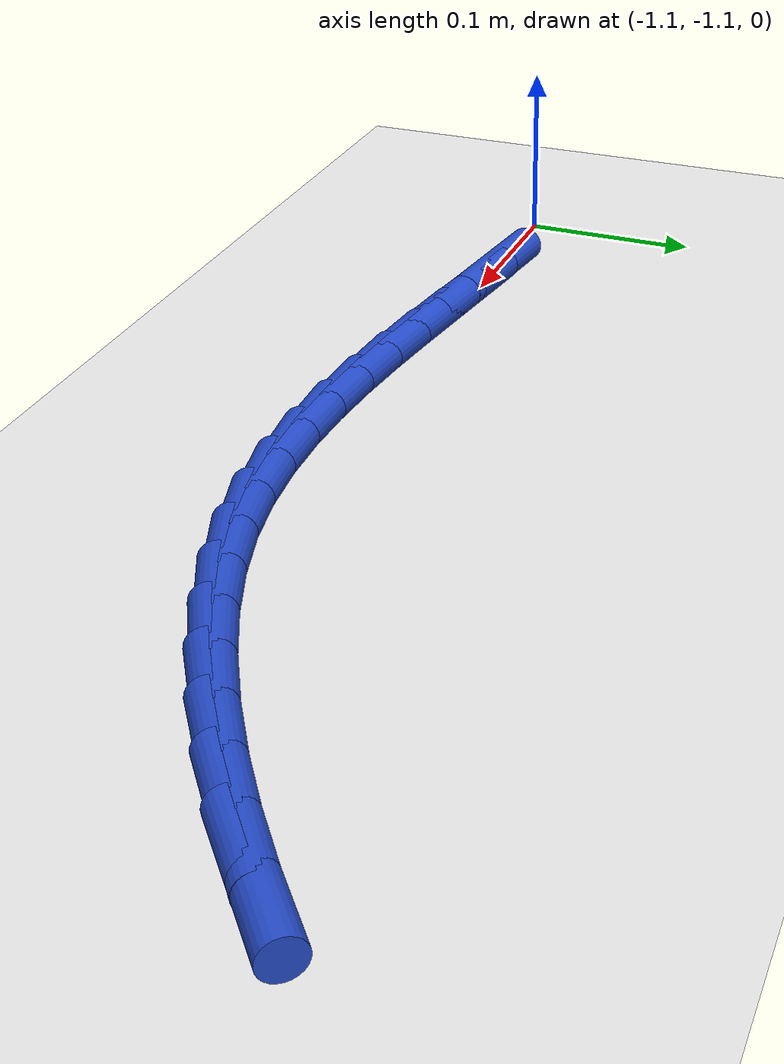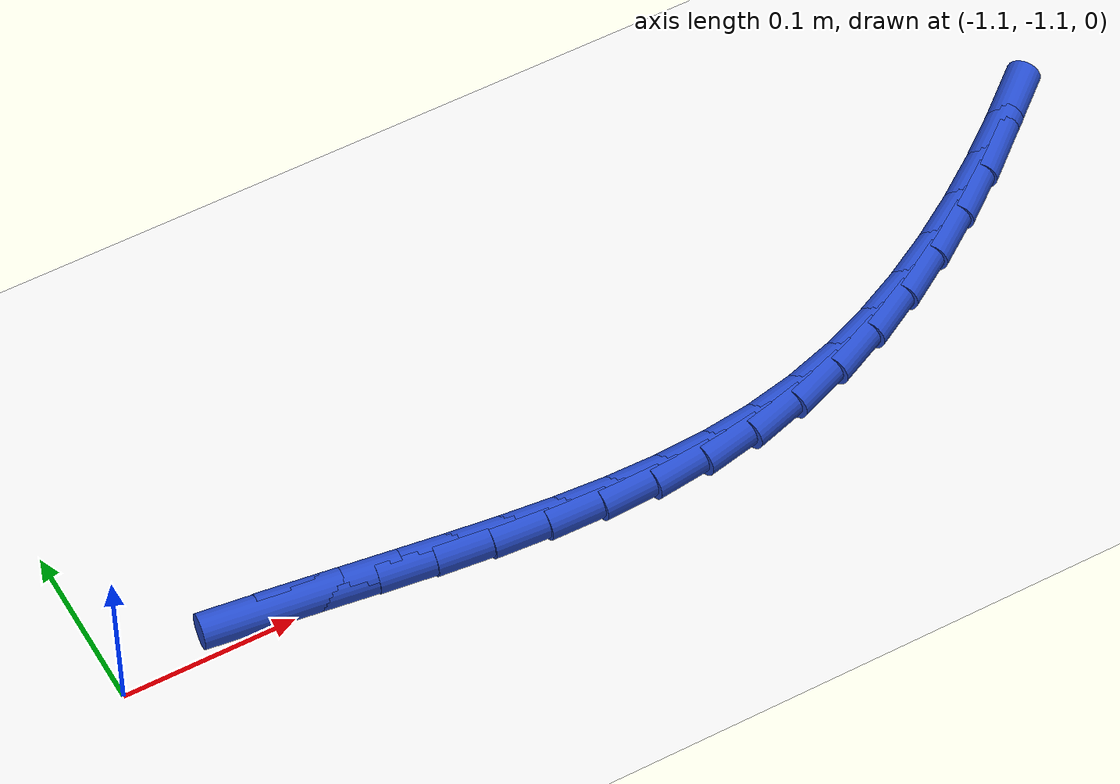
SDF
<sdf version="1.6">
 <world name="default">
  <model name="ground_plane">
   <static>1</static>
   <link name="link">
    <collision name="collision">
     <geometry><plane><normal>0 0 1</normal><size>100 100</size></plane></geometry>
     <surface><friction><ode><mu>100</mu><mu2>50</mu2></ode></friction></surface>
    </collision>
    <visual name="visual">
     <cast_shadows>0</cast_shadows>
     <geometry><plane><normal>0 0 1</normal><size>100 100</size></plane></geometry>
     <material>
      <script><uri>file://media/materials/scripts/gazebo.material</uri><name>Gazebo/WhiteGlow</name></script>
     </material>
    </visual>
   </link>
  </model>
  <model name="line">
   <link name="link_167">
    <pose>-1.0104411782730094 -1.0940935230445024 0.01 0 1.57 -0.12902777426079318</pose>
    <collision name="collision">
     <geometry><cylinder><radius>0.01</radius><length>0.08</length></cylinder></geometry>
    </collision>
    <visual name="visual">
     <material>
      <script><name>Gazebo/Blue</name><uri>file://media/materials/scripts/gazebo.material</uri></script>
     </material>
     <geometry><cylinder><radius>0.01</radius><length>0.08</length></cylinder></geometry>
    </visual>
   </link>
   <link name="link_168">
    <pose>-0.9780910778286771 -1.098290903290381 0.01 0 1.57 -0.13850436814950307</pose>
    <collision name="collision">
     <geometry><cylinder><radius>0.01</radius><length>0.08</length></cylinder></geometry>
    </collision>
    <visual name="visual">
     <material>
      <script><name>Gazebo/Blue</name><uri>file://media/materials/scripts/gazebo.material</uri></script>
     </material>
     <geometry><cylinder><radius>0.01</radius><length>0.08</length></cylinder></geometry>
    </visual>
   </link>
   <link name="link_169">
    <pose>-0.9458429749498773 -1.1027861882727545 0.01 0 1.57 -0.13705356283302142</pose>
    <collision name="collision">
     <geometry><cylinder><radius>0.01</radius><length>0.08</length></cylinder></geometry>
    </collision>
    <visual name="visual">
     <material>
      <script><name>Gazebo/Blue</name><uri>file://media/materials/scripts/gazebo.material</uri></script>
     </material>
     <geometry><cylinder><radius>0.01</radius><length>0.08</length></cylinder></geometry>
    </visual>
   </link>
   <link name="link_170">
    <pose>-0.9137319691054406 -1.1072148798561712 0.01 0 1.57 -0.12451680473508835</pose>
    <collision name="collision">
     <geometry><cylinder><radius>0.01</radius><length>0.08</length></cylinder></geometry>
    </collision>
    <visual name="visual">
     <material>
      <script><name>Gazebo/Blue</name><uri>file://media/materials/scripts/gazebo.material</uri></script>
     </material>
     <geometry><cylinder><radius>0.01</radius><length>0.08</length></cylinder></geometry>
    </visual>
   </link>
   <link name="link_171">
    <pose>-0.8817931597641967 -1.111212479905179 0.01 0 1.57 -0.10056904221946376</pose>
    <collision name="collision">
     <geometry><cylinder><radius>0.01</radius><length>0.08</length></cylinder></geometry>
    </collision>
    <visual name="visual">
     <material>
      <script><name>Gazebo/Blue</name><uri>file://media/materials/scripts/gazebo.material</uri></script>
     </material>
     <geometry><cylinder><radius>0.01</radius><length>0.08</length></cylinder></geometry>
    </visual>
   </link>
   <link name="link_172">
    <pose>-0.8500616463949754 -1.1144144902843265 0.01 0 1.57 -0.06475467933144895</pose>
    <collision name="collision">
     <geometry><cylinder><radius>0.01</radius><length>0.08</length></cylinder></geometry>
    </collision>
    <visual name="visual">
     <material>
      <script><name>Gazebo/Blue</name><uri>file://media/materials/scripts/gazebo.material</uri></script>
     </material>
     <geometry><cylinder><radius>0.01</radius><length>0.08</length></cylinder></geometry>
    </visual>
   </link>
   <link name="link_173">
    <pose>-0.8185725284666046 -1.116456412858161 0.01 0 1.57 -0.016573609894209355</pose>
    <collision name="collision">
     <geometry><cylinder><radius>0.01</radius><length>0.08</length></cylinder></geometry>
    </collision>
    <visual name="visual">
     <material>
      <script><name>Gazebo/Blue</name><uri>file://media/materials/scripts/gazebo.material</uri></script>
     </material>
     <geometry><cylinder><radius>0.01</radius><length>0.08</length></cylinder></geometry>
    </visual>
   </link>
   <link name="link_174">
    <pose>-0.787360905447916 -1.1169737494912313 0.01 0 1.57 0.04436538582578499</pose>
    <collision name="collision">
     <geometry><cylinder><radius>0.01</radius><length>0.08</length></cylinder></geometry>
    </collision>
    <visual name="visual">
     <material>
      <script><name>Gazebo/Blue</name><uri>file://media/materials/scripts/gazebo.material</uri></script>
     </material>
     <geometry><cylinder><radius>0.01</radius><length>0.08</length></cylinder></geometry>
    </visual>
   </link>
   <link name="link_175">
    <pose>-0.756461876807739 -1.1156020020480855 0.01 0 1.57 0.11811123404729001</pose>
    <collision name="collision">
     <geometry><cylinder><radius>0.01</radius><length>0.08</length></cylinder></geometry>
    </collision>
    <visual name="visual">
     <material>
      <script><name>Gazebo/Blue</name><uri>file://media/materials/scripts/gazebo.material</uri></script>
     </material>
     <geometry><cylinder><radius>0.01</radius><length>0.08</length></cylinder></geometry>
    </visual>
   </link>
   <link name="link_176">
    <pose>-0.7259105420149026 -1.1119766723932714 0.01 0 1.57 0.20394657526634186</pose>
    <collision name="collision">
     <geometry><cylinder><radius>0.01</radius><length>0.08</length></cylinder></geometry>
    </collision>
    <visual name="visual">
     <material>
      <script><name>Gazebo/Blue</name><uri>file://media/materials/scripts/gazebo.material</uri></script>
     </material>
     <geometry><cylinder><radius>0.01</radius><length>0.08</length></cylinder></geometry>
    </visual>
   </link>
   <link name="link_177">
    <pose>-0.6957422142871311 -1.1057371957419455 0.01 0 1.57 0.29331073215807263</pose>
    <collision name="collision">
     <geometry><cylinder><radius>0.01</radius><length>0.08</length></cylinder></geometry>
    </collision>
    <visual name="visual">
     <material>
      <script><name>Gazebo/Blue</name><uri>file://media/materials/scripts/gazebo.material</uri></script>
     </material>
     <geometry><cylinder><radius>0.01</radius><length>0.08</length></cylinder></geometry>
    </visual>
   </link>
   <link name="link_178">
    <pose>-0.6660048608598449 -1.0967558631955967 0.01 0 1.57 0.3744834843667962</pose>
    <collision name="collision">
     <geometry><cylinder><radius>0.01</radius><length>0.08</length></cylinder></geometry>
    </collision>
    <visual name="visual">
     <material>
      <script><name>Gazebo/Blue</name><uri>file://media/materials/scripts/gazebo.material</uri></script>
     </material>
     <geometry><cylinder><radius>0.01</radius><length>0.08</length></cylinder></geometry>
    </visual>
   </link>
   <link name="link_179">
    <pose>-0.6367659650454122 -1.0852640955411197 0.01 0 1.57 0.44689275724323035</pose>
    <collision name="collision">
     <geometry><cylinder><radius>0.01</radius><length>0.08</length></cylinder></geometry>
    </collision>
    <visual name="visual">
     <material>
      <script><name>Gazebo/Blue</name><uri>file://media/materials/scripts/gazebo.material</uri></script>
     </material>
     <geometry><cylinder><radius>0.01</radius><length>0.08</length></cylinder></geometry>
    </visual>
   </link>
   <link name="link_180">
    <pose>-0.60809467759706 -1.0715239973710562 0.01 0 1.57 0.5112208760374256</pose>
    <collision name="collision">
     <geometry><cylinder><radius>0.01</radius><length>0.08</length></cylinder></geometry>
    </collision>
    <visual name="visual">
     <material>
      <script><name>Gazebo/Blue</name><uri>file://media/materials/scripts/gazebo.material</uri></script>
     </material>
     <geometry><cylinder><radius>0.01</radius><length>0.08</length></cylinder></geometry>
    </visual>
   </link>
   <link name="link_181">
    <pose>-0.5800601492680163 -1.0557976732779466 0.01 0 1.57 0.568277513665837</pose>
    <collision name="collision">
     <geometry><cylinder><radius>0.01</radius><length>0.08</length></cylinder></geometry>
    </collision>
    <visual name="visual">
     <material>
      <script><name>Gazebo/Blue</name><uri>file://media/materials/scripts/gazebo.material</uri></script>
     </material>
     <geometry><cylinder><radius>0.01</radius><length>0.08</length></cylinder></geometry>
    </visual>
   </link>
   <link name="link_182">
    <pose>-0.5527315308115084 -1.038347227854331 0.01 0 1.57 0.6188924842445651</pose>
    <collision name="collision">
     <geometry><cylinder><radius>0.01</radius><length>0.08</length></cylinder></geometry>
    </collision>
    <visual name="visual">
     <material>
      <script><name>Gazebo/Blue</name><uri>file://media/materials/scripts/gazebo.material</uri></script>
     </material>
     <geometry><cylinder><radius>0.01</radius><length>0.08</length></cylinder></geometry>
    </visual>
   </link>
   <link name="link_183">
    <pose>-0.5261779729807651 -1.019434765692752 0.01 0 1.57 0.6638535479043477</pose>
    <collision name="collision">
     <geometry><cylinder><radius>0.01</radius><length>0.08</length></cylinder></geometry>
    </collision>
    <visual name="visual">
     <material>
      <script><name>Gazebo/Blue</name><uri>file://media/materials/scripts/gazebo.material</uri></script>
     </material>
     <geometry><cylinder><radius>0.01</radius><length>0.08</length></cylinder></geometry>
    </visual>
   </link>
   <link name="link_184">
    <pose>-0.5004686265290142 -0.9993223913857495 0.01 0 1.57 0.7038773890314596</pose>
    <collision name="collision">
     <geometry><cylinder><radius>0.01</radius><length>0.08</length></cylinder></geometry>
    </collision>
    <visual name="visual">
     <material>
      <script><name>Gazebo/Blue</name><uri>file://media/materials/scripts/gazebo.material</uri></script>
     </material>
     <geometry><cylinder><radius>0.01</radius><length>0.08</length></cylinder></geometry>
    </visual>
   </link>
  </model>
 </world>
</sdf>
